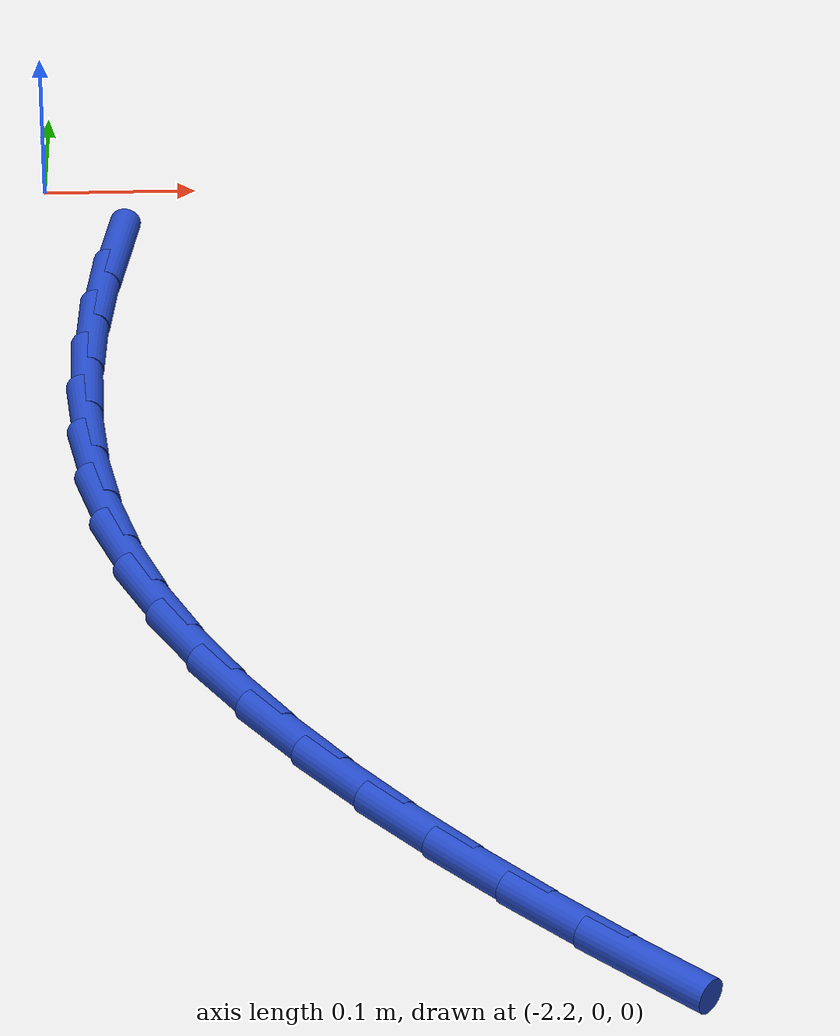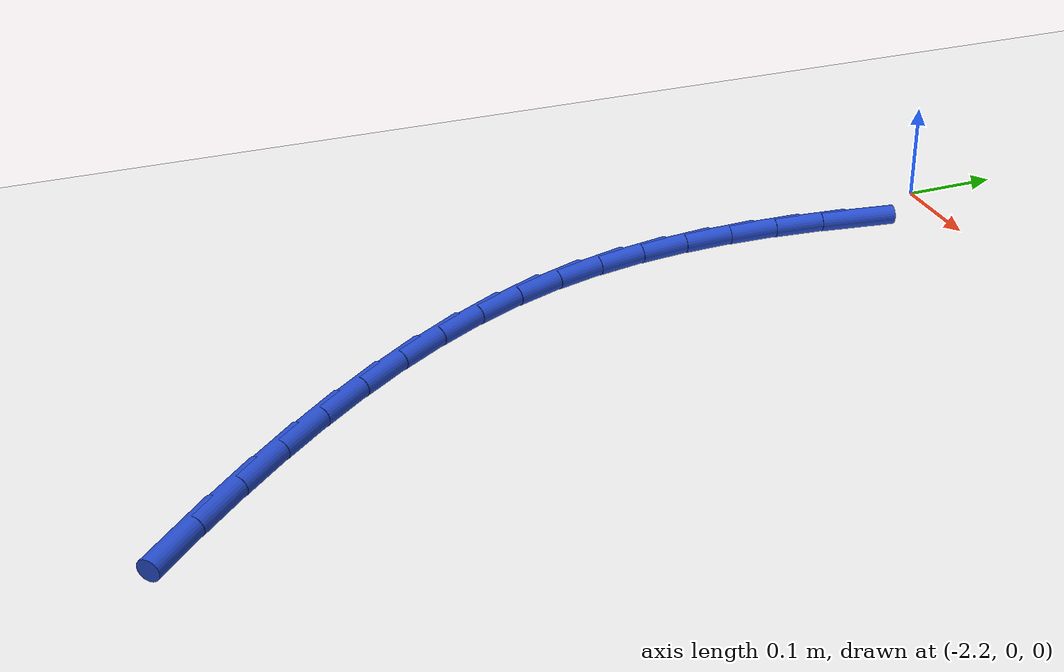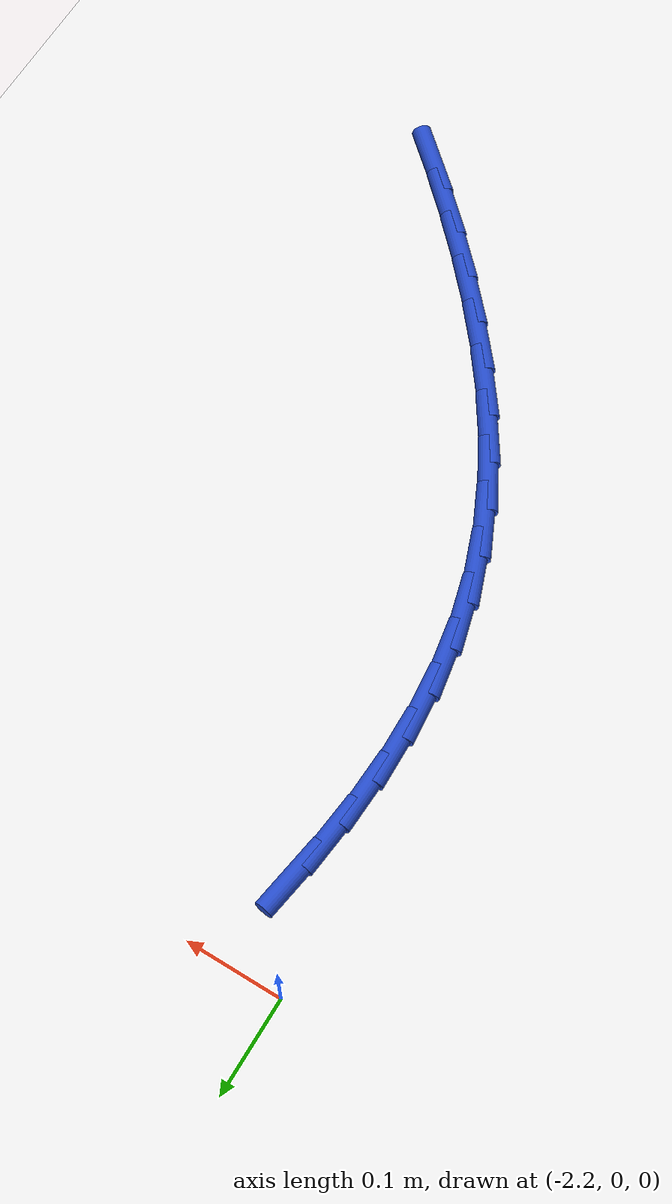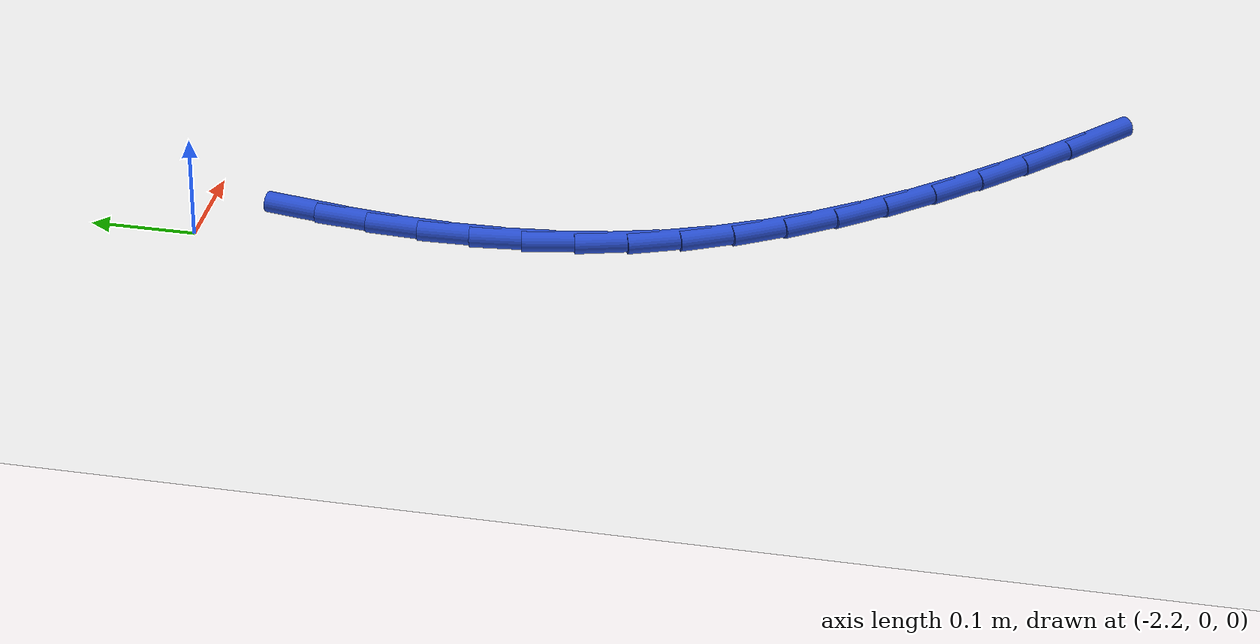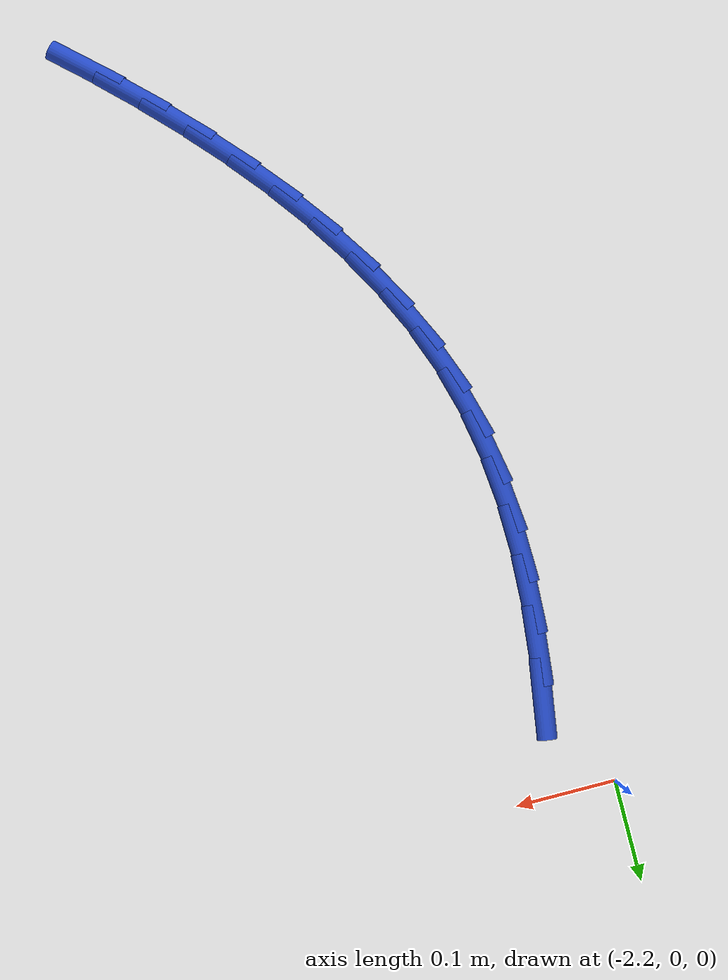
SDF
<sdf version="1.6">
 <world name="default">
  <model name="ground_plane">
   <static>1</static>
   <link name="link">
    <collision name="collision">
     <geometry><plane><normal>0 0 1</normal><size>100 100</size></plane></geometry>
     <surface><friction><ode><mu>100</mu><mu2>50</mu2></ode></friction></surface>
    </collision>
    <visual name="visual">
     <cast_shadows>0</cast_shadows>
     <geometry><plane><normal>0 0 1</normal><size>100 100</size></plane></geometry>
     <material>
      <script><uri>file://media/materials/scripts/gazebo.material</uri><name>Gazebo/WhiteGlow</name></script>
     </material>
    </visual>
   </link>
  </model>
  <model name="line">
   <link name="link_65">
    <pose>-2.151547365401622 -0.09654040745498496 0.01 0 1.57 1.4155746256596506</pose>
    <collision name="collision">
     <geometry><cylinder><radius>0.01</radius><length>0.08</length></cylinder></geometry>
    </collision>
    <visual name="visual">
     <material>
      <script><name>Gazebo/Blue</name><uri>file://media/materials/scripts/gazebo.material</uri></script>
     </material>
     <geometry><cylinder><radius>0.01</radius><length>0.08</length></cylinder></geometry>
    </visual>
   </link>
   <link name="link_66">
    <pose>-2.159559825241593 -0.14774462724312473 0.01 0 1.57 1.4681187633779986</pose>
    <collision name="collision">
     <geometry><cylinder><radius>0.01</radius><length>0.08</length></cylinder></geometry>
    </collision>
    <visual name="visual">
     <material>
      <script><name>Gazebo/Blue</name><uri>file://media/materials/scripts/gazebo.material</uri></script>
     </material>
     <geometry><cylinder><radius>0.01</radius><length>0.08</length></cylinder></geometry>
    </visual>
   </link>
   <link name="link_67">
    <pose>-2.1647976758940906 -0.198577842704662 0.01 0 1.57 1.527683358622251</pose>
    <collision name="collision">
     <geometry><cylinder><radius>0.01</radius><length>0.08</length></cylinder></geometry>
    </collision>
    <visual name="visual">
     <material>
      <script><name>Gazebo/Blue</name><uri>file://media/materials/scripts/gazebo.material</uri></script>
     </material>
     <geometry><cylinder><radius>0.01</radius><length>0.08</length></cylinder></geometry>
    </visual>
   </link>
   <link name="link_68">
    <pose>-2.166968963239076 -0.2489093784973267 0.01 0 1.57 -1.546912546228253</pose>
    <collision name="collision">
     <geometry><cylinder><radius>0.01</radius><length>0.08</length></cylinder></geometry>
    </collision>
    <visual name="visual">
     <material>
      <script><name>Gazebo/Blue</name><uri>file://media/materials/scripts/gazebo.material</uri></script>
     </material>
     <geometry><cylinder><radius>0.01</radius><length>0.08</length></cylinder></geometry>
    </visual>
   </link>
   <link name="link_69">
    <pose>-2.165781733156509 -0.2986085592788507 0.01 0 1.57 -1.4722590680438679</pose>
    <collision name="collision">
     <geometry><cylinder><radius>0.01</radius><length>0.08</length></cylinder></geometry>
    </collision>
    <visual name="visual">
     <material>
      <script><name>Gazebo/Blue</name><uri>file://media/materials/scripts/gazebo.material</uri></script>
     </material>
     <geometry><cylinder><radius>0.01</radius><length>0.08</length></cylinder></geometry>
    </visual>
   </link>
   <link name="link_70">
    <pose>-2.1609440315263493 -0.3475447097069662 0.01 0 1.57 -1.3900335120040135</pose>
    <collision name="collision">
     <geometry><cylinder><radius>0.01</radius><length>0.08</length></cylinder></geometry>
    </collision>
    <visual name="visual">
     <material>
      <script><name>Gazebo/Blue</name><uri>file://media/materials/scripts/gazebo.material</uri></script>
     </material>
     <geometry><cylinder><radius>0.01</radius><length>0.08</length></cylinder></geometry>
    </visual>
   </link>
   <link name="link_71">
    <pose>-2.1521639042285576 -0.395587154439403 0.01 0 1.57 -1.3007598481464548</pose>
    <collision name="collision">
     <geometry><cylinder><radius>0.01</radius><length>0.08</length></cylinder></geometry>
    </collision>
    <visual name="visual">
     <material>
      <script><name>Gazebo/Blue</name><uri>file://media/materials/scripts/gazebo.material</uri></script>
     </material>
     <geometry><cylinder><radius>0.01</radius><length>0.08</length></cylinder></geometry>
    </visual>
   </link>
   <link name="link_72">
    <pose>-2.1391494246317477 -0.44260522315477985 0.01 0 1.57 -1.2083706277996684</pose>
    <collision name="collision">
     <geometry><cylinder><radius>0.01</radius><length>0.08</length></cylinder></geometry>
    </collision>
    <visual name="visual">
     <material>
      <script><name>Gazebo/Blue</name><uri>file://media/materials/scripts/gazebo.material</uri></script>
     </material>
     <geometry><cylinder><radius>0.01</radius><length>0.08</length></cylinder></geometry>
    </visual>
   </link>
   <link name="link_73">
    <pose>-2.1217495658736287 -0.48849398130678157 0.01 0 1.57 -1.1234202133197517</pose>
    <collision name="collision">
     <geometry><cylinder><radius>0.01</radius><length>0.08</length></cylinder></geometry>
    </collision>
    <visual name="visual">
     <material>
      <script><name>Gazebo/Blue</name><uri>file://media/materials/scripts/gazebo.material</uri></script>
     </material>
     <geometry><cylinder><radius>0.01</radius><length>0.08</length></cylinder></geometry>
    </visual>
   </link>
   <link name="link_74">
    <pose>-2.1002822077330925 -0.5332341415855795 0.01 0 1.57 -1.0480097384781626</pose>
    <collision name="collision">
     <geometry><cylinder><radius>0.01</radius><length>0.08</length></cylinder></geometry>
    </collision>
    <visual name="visual">
     <material>
      <script><name>Gazebo/Blue</name><uri>file://media/materials/scripts/gazebo.material</uri></script>
     </material>
     <geometry><cylinder><radius>0.01</radius><length>0.08</length></cylinder></geometry>
    </visual>
   </link>
   <link name="link_75">
    <pose>-2.0751626516786192 -0.5768242110518123 0.01 0 1.57 -0.9817483082968904</pose>
    <collision name="collision">
     <geometry><cylinder><radius>0.01</radius><length>0.08</length></cylinder></geometry>
    </collision>
    <visual name="visual">
     <material>
      <script><name>Gazebo/Blue</name><uri>file://media/materials/scripts/gazebo.material</uri></script>
     </material>
     <geometry><cylinder><radius>0.01</radius><length>0.08</length></cylinder></geometry>
    </visual>
   </link>
   <link name="link_76">
    <pose>-2.046806199178692 -0.619262696766116 0.01 0 1.57 -0.9239862119581334</pose>
    <collision name="collision">
     <geometry><cylinder><radius>0.01</radius><length>0.08</length></cylinder></geometry>
    </collision>
    <visual name="visual">
     <material>
      <script><name>Gazebo/Blue</name><uri>file://media/materials/scripts/gazebo.material</uri></script>
     </material>
     <geometry><cylinder><radius>0.01</radius><length>0.08</length></cylinder></geometry>
    </visual>
   </link>
   <link name="link_77">
    <pose>-2.015628151701791 -0.6605481057891293 0.01 0 1.57 -0.8739737989061767</pose>
    <collision name="collision">
     <geometry><cylinder><radius>0.01</radius><length>0.08</length></cylinder></geometry>
    </collision>
    <visual name="visual">
     <material>
      <script><name>Gazebo/Blue</name><uri>file://media/materials/scripts/gazebo.material</uri></script>
     </material>
     <geometry><cylinder><radius>0.01</radius><length>0.08</length></cylinder></geometry>
    </visual>
   </link>
   <link name="link_78">
    <pose>-1.9820438107163971 -0.7006789451814898 0.01 0 1.57 -0.8309660448356121</pose>
    <collision name="collision">
     <geometry><cylinder><radius>0.01</radius><length>0.08</length></cylinder></geometry>
    </collision>
    <visual name="visual">
     <material>
      <script><name>Gazebo/Blue</name><uri>file://media/materials/scripts/gazebo.material</uri></script>
     </material>
     <geometry><cylinder><radius>0.01</radius><length>0.08</length></cylinder></geometry>
    </visual>
   </link>
   <link name="link_79">
    <pose>-1.9464684776909928 -0.7396537220038345 0.01 0 1.57 -0.7942843282202288</pose>
    <collision name="collision">
     <geometry><cylinder><radius>0.01</radius><length>0.08</length></cylinder></geometry>
    </collision>
    <visual name="visual">
     <material>
      <script><name>Gazebo/Blue</name><uri>file://media/materials/scripts/gazebo.material</uri></script>
     </material>
     <geometry><cylinder><radius>0.01</radius><length>0.08</length></cylinder></geometry>
    </visual>
   </link>
   <link name="link_80">
    <pose>-1.9093174540940576 -0.7774709433168016 0.01 0 1.57 -0.7633014424709778</pose>
    <collision name="collision">
     <geometry><cylinder><radius>0.01</radius><length>0.08</length></cylinder></geometry>
    </collision>
    <visual name="visual">
     <material>
      <script><name>Gazebo/Blue</name><uri>file://media/materials/scripts/gazebo.material</uri></script>
     </material>
     <geometry><cylinder><radius>0.01</radius><length>0.08</length></cylinder></geometry>
    </visual>
   </link>
   <link name="link_81">
    <pose>-1.8710040433390442 -0.8141274940831419 0.01 0 1.57 -0.7337033183984302</pose>
    <collision name="collision">
     <geometry><cylinder><radius>0.01</radius><length>0.08</length></cylinder></geometry>
    </collision>
    <visual name="visual">
     <material>
      <script><name>Gazebo/Blue</name><uri>file://media/materials/scripts/gazebo.material</uri></script>
     </material>
     <geometry><cylinder><radius>0.01</radius><length>0.08</length></cylinder></geometry>
    </visual>
   </link>
  </model>
 </world>
</sdf>
